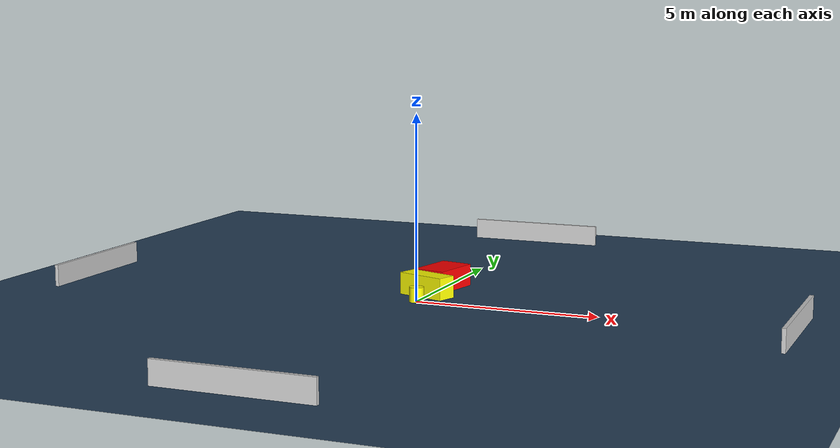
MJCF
<?xml version="1.0" ?>
<mujoco model="generated_environment">
  <option timestep="0.01" integrator="RK4" cone="elliptic"/>
  <default>
    <geom density="1"/>
  </default>
  <asset>
    <texture builtin="gradient" height="3072" name="skybox" rgb1="0.3 0.5 0.7" rgb2="0 0 0" type="skybox" width="512"/>
    <texture builtin="checker" height="300" name="groundplane" rgb1="0.2 0.3 0.4" rgb2="0.1 0.2 0.3" type="2d" width="300"/>
    <material name="groundplane" reflectance="0.2" texrepeat="5 5" texture="groundplane"/>
  </asset>
  <worldbody>
    <light dir="0 0 -1" directional="true" pos="0 0 1.5"/>
    <geom condim="3" friction="0.5 0.005 0.001" material="groundplane" name="floor" pos="0 0 0" size="0 0 0.05" type="plane"/>
    <body name="walls">
      <geom name="wall_1" condim="4" pos="-10.0 0.0 0.3" rgba="0.800000011920929 0.800000011920929 0.800000011920929 1.0" size="0.05 2.0 0.3" type="box"/>
      <geom name="wall_2" condim="4" pos="10.0 0.0 0.3" rgba="0.800000011920929 0.800000011920929 0.800000011920929 1.0" size="0.05 2.0 0.3" type="box"/>
      <geom name="wall_3" condim="4" pos="0.0 -10.0 0.3" rgba="0.800000011920929 0.800000011920929 0.800000011920929 1.0" size="2.0 0.05 0.3" type="box"/>
      <geom name="wall_4" condim="4" pos="0.0 10.0 0.3" rgba="0.800000011920929 0.800000011920929 0.800000011920929 1.0" size="2.0 0.05 0.3" type="box"/>
    </body>
    <body name="robot">
      <joint name="joint_x" type="slide" pos="0 0 0" axis="1 0 0"/>
      <joint name="joint_y" type="slide" pos="0 0 0" axis="0 1 0"/>
      <geom name="robot" type="cylinder" pos="0.0 0.0 0.2" size="0.2 0.2 0.0" mass="5.0" friction="1.0 0.005 0.0001" condim="4" rgba="1.0 1.0 0.0 1.0"/>
    </body>
    <body name="obstacle_1_movable">
      <geom name="obstacle_1_movable" condim="4" pos="-0.02848812471558139 0.7979463156676846 0.3" euler="0 0 340.9366889955098" friction="0.0 0.005 0.001" rgba="1.0 1.0 0.0 1.0" size="0.7049426822840379 0.2836344922750492 0.3" type="box" mass="0.1"/>
      <joint type="free"/>
    </body>
    <body name="obstacle_2_static">
      <geom name="obstacle_2_static" condim="4" pos="-0.026194304243732803 1.9679543445298704 0.3" euler="0 0 168.2359330740587" friction="0.0 0.005 0.001" rgba="1.0 0.0 0.0 1.0" size="0.45101638805353766 0.7081739500423234 0.3" type="box"/>
    </body>
  </worldbody>
  <actuator>
    <motor name="actuator_x" joint="joint_x" gear="1" ctrlrange="-1 1"/>
    <motor name="actuator_y" joint="joint_y" gear="1" ctrlrange="-1 1"/>
  </actuator>
</mujoco>
